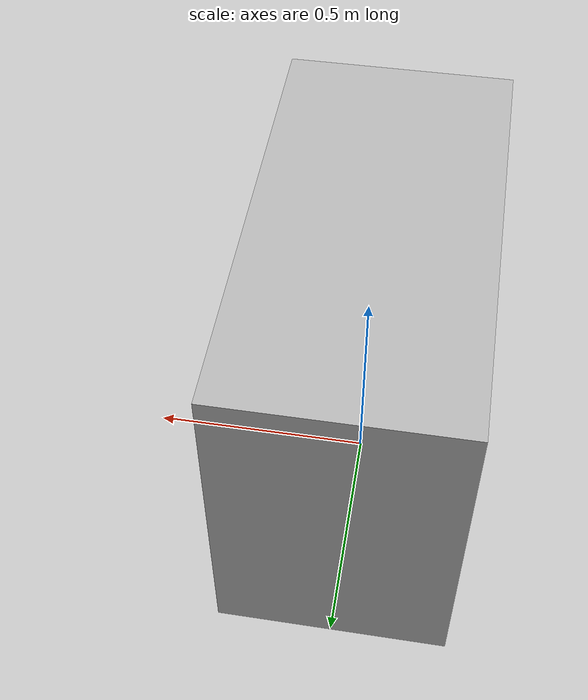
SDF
<?xml version="1.0"?>
<sdf version="1.6">
  <model name="rwc2019/sidetable">
    <link name="1_link">
      <collision name="1_col">
        <geometry>
          <box>
            <size>0.5 1.008 0.75</size>
          </box>
        </geometry>
      </collision>
      <visual name="1_vis">
        <geometry>
          <box>
            <size>0.5 1.008 0.75</size>
          </box>
        </geometry>
      </visual>
      <pose>0.0 0.0 0.375 0 0 0</pose>
    </link>
    <link name="on_top_of">
      <virtual_volume name="on_top_of_vv">
        <geometry>
          <box>
            <size>0.45 0.948 0.25</size>
          </box>
        </geometry>
        <pose>0.03 0.0 0.895 0 0 0</pose>
      </virtual_volume>
    </link>
    <link name="in_front_of">
      <virtual_volume name="in_front_of_vv">
        <geometry>
          <box>
            <size>0.2 0.5 0.01</size>
          </box>
        </geometry>
        <pose>0.75 0.0 0.005 0 0 0</pose>
      </virtual_volume>
    </link>
    <static>true</static>
  </model>
</sdf>
